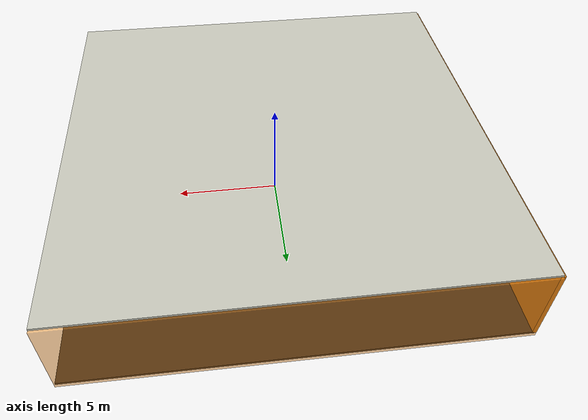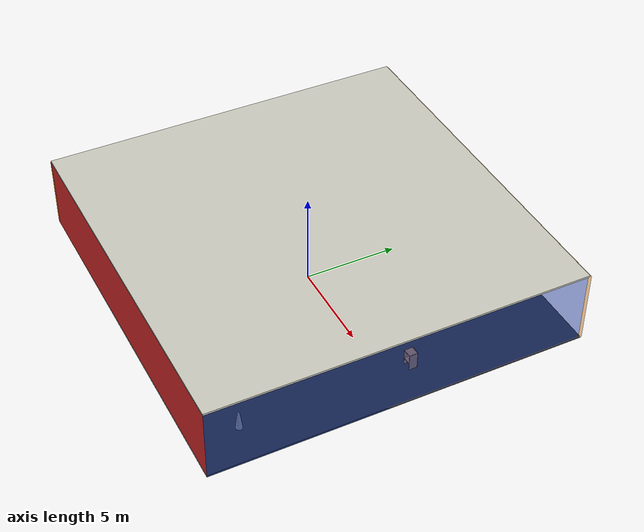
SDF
<sdf version="1.4">
 <world name="default">
  <physics type="ode">
   <max_step_size>0.001</max_step_size>
   <real_time_factor>1</real_time_factor>
   <real_time_update_rate>1000</real_time_update_rate>
   <gravity>0 0 -9.8</gravity>
  </physics>
  <scene><ambient>0.4 0.4 0.4 1</ambient><background>0.7 0.7 0.7 1</background><shadows>1</shadows></scene>
  <model name="Surrounding">
   <static>1</static>
   <link name="Ceiling">
    <collision name="Ceiling_Collision"><geometry><box><size>20 20 0.1</size></box></geometry></collision>
    <visual name="Ceiling_Visual">
     <geometry><box><size>20 20 0.1</size></box></geometry>
     <material>
      <script><uri>file://media/materials/scripts/gazebo.material</uri><name>Gazebo/PaintedWall</name></script>
     </material>
    </visual>
    <pose>0 0 4.05 0 0 0</pose>
   </link>
   <link name="Wall_South">
    <collision name="Wall_South_Collision">
     <geometry><box><size>20 0 4</size></box></geometry>
     <pose>0 0 2 0 -0 0</pose>
    </collision>
    <visual name="Wall_South_Visual">
     <pose>0 0 2 0 -0 0</pose>
     <geometry><box><size>20 0 4</size></box></geometry>
     <material>
      <script><uri>file://media/materials/scripts/gazebo.material</uri><name>Gazebo/RedBright</name></script>
     </material>
    </visual>
    <velocity_decay><linear>0</linear><angular>0</angular></velocity_decay>
    <pose>0 -10 0 0 -0 0</pose>
   </link>
   <link name="Wall_East">
    <collision name="Wall_21_Collision">
     <geometry><box><size>20 0 4</size></box></geometry>
     <pose>0 0 2 0 -0 0</pose>
    </collision>
    <visual name="Wall_21_Visual">
     <pose>0 0 2 0 -0 0</pose>
     <geometry><box><size>20 0 4</size></box></geometry>
     <material>
      <script><uri>file://media/materials/scripts/gazebo.material</uri><name>Gazebo/BlueTransparent</name></script>
     </material>
    </visual>
    <velocity_decay><linear>0</linear><angular>0</angular></velocity_decay>
    <pose>10 0 0 0 -0 1.5708</pose>
   </link>
   <link name="Wall_North">
    <collision name="Wall_22_Collision">
     <geometry><box><size>20 0.2 4</size></box></geometry>
     <pose>0 0 2 0 -0 0</pose>
    </collision>
    <visual name="Wall_22_Visual">
     <pose>0 0 2 0 -0 0</pose>
     <geometry><box><size>20 0.2 4</size></box></geometry>
     <material>
      <script>
       <uri>file://media/materials/scripts/gazebo.material</uri>
       <name>Gazebo/OrangeTransparent</name>
      </script>
     </material>
    </visual>
    <velocity_decay><linear>0</linear><angular>0</angular></velocity_decay>
    <pose>0 10 0 0 -0 0</pose>
   </link>
   <link name="Wall_West">
    <collision name="Wall_23_Collision">
     <geometry><box><size>20 0.2 4</size></box></geometry>
     <pose>0 0 2 0 -0 0</pose>
    </collision>
    <visual name="Wall_23_Visual">
     <pose>0 0 2 0 -0 0</pose>
     <geometry><box><size>20 0.2 4</size></box></geometry>
     <material>
      <script><uri>file://media/materials/scripts/gazebo.material</uri><name>Gazebo/Orange</name></script>
     </material>
    </visual>
    <velocity_decay><linear>0</linear><angular>0</angular></velocity_decay>
    <pose>-10 0 0 0 0 -1.5708</pose>
   </link>
   <link name="Ground_link">
    <collision name="collision">
     <pose>0 0 .05 0 -0 0</pose>
     <geometry><box><size>20 20 0.1</size></box></geometry>
    </collision>
    <visual name="visual">
     <pose>0 0 .05 0 -0 0</pose>
     <geometry><box><size>20 20 0.1</size></box></geometry>
     <material>
      <script><uri>file://media/materials/scripts/gazebo.material</uri><name>Gazebo/Black</name></script>
     </material>
    </visual>
   </link>
   <static>1</static>
  </model>
  <spherical_coordinates>
   <surface_model>EARTH_WGS84</surface_model>
   <latitude_deg>0</latitude_deg>
   <longitude_deg>0</longitude_deg>
   <elevation>0</elevation>
   <heading_deg>0</heading_deg>
  </spherical_coordinates>
  <light name="lightball_0" type="diffuse">
   <diffuse>0.8 0.8 0.8 1</diffuse>
   <specular>0.2 0.2 0.2 1</specular>
   <attenuation>
    <range>100</range>
    <constant>0.7</constant>
    <linear>0.01</linear>
    <quadratic>0.001</quadratic>
   </attenuation>
   <direction>-0.5 0.1 -0.9</direction>
   <pose>-3.78651869887 6.0163525122 1.65587118176 0 0 0</pose>
  </light>
  <light name="lightball_1" type="diffuse">
   <diffuse>0.8 0.8 0.8 1</diffuse>
   <specular>0.2 0.2 0.2 1</specular>
   <attenuation>
    <range>100</range>
    <constant>0.7</constant>
    <linear>0.01</linear>
    <quadratic>0.001</quadratic>
   </attenuation>
   <direction>-0.5 0.1 -0.9</direction>
   <pose>-6.3209130486 -2.95522593404 2.79808329981 0 0 0</pose>
  </light>
  <light name="lightball_2" type="diffuse">
   <diffuse>0.8 0.8 0.8 1</diffuse>
   <specular>0.2 0.2 0.2 1</specular>
   <attenuation>
    <range>100</range>
    <constant>0.7</constant>
    <linear>0.01</linear>
    <quadratic>0.001</quadratic>
   </attenuation>
   <direction>-0.5 0.1 -0.9</direction>
   <pose>0.948735051986 -4.95942779631 0.592300270457 0 0 0</pose>
  </light>
  <light name="lightball_3" type="diffuse">
   <diffuse>0.8 0.8 0.8 1</diffuse>
   <specular>0.2 0.2 0.2 1</specular>
   <attenuation>
    <range>100</range>
    <constant>0.7</constant>
    <linear>0.01</linear>
    <quadratic>0.001</quadratic>
   </attenuation>
   <direction>-0.5 0.1 -0.9</direction>
   <pose>5.64701107253 -2.18946103278 3.22900734397 0 0 0</pose>
  </light>
  <include><uri>model://cabinet</uri><pose>-4.49245931949 1.94958609955 0 0 0 1.78611432518</pose></include>
  <include>
   <uri>model://construction_cone</uri>
   <pose>8.00845719244 -7.51444517263 0 0 0 1.73056728869</pose>
  </include>
  <include><uri>model://cabinet</uri><pose>8.02363121465 1.52230767638 0 0 0 1.60750615289</pose></include>
 </world>
</sdf>

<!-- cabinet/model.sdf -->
<sdf version="1.5">
  <model name="cabinet">
    <static>true</static>
    <link name="cabinet_bottom_plate">
      <inertial>
        <pose>0 0 -1 0 0 0</pose>
        <inertia>
          <ixx>2.050000</ixx>
          <ixy>0</ixy>
          <ixz>0</ixz>
          <iyy>2.050000</iyy>
          <iyz>0</iyz>
          <izz>2.050000</izz>
        </inertia>
        <mass>25.000000</mass>
      </inertial>
      <collision name="cabinet_bottom_plate_geom">
        <pose>0 0 0.010000 0 0 0</pose>
        <geometry>
          <box>
            <size>0.450000 0.450000 0.020000</size>
          </box>
        </geometry>
      </collision>
      <visual name="cabinet_bottom_plate_geom_visual">
        <pose>0 0 0.010000 0 0 0</pose>
        <geometry>
          <box>
            <size>0.450000 0.450000 0.020000</size>
          </box>
        </geometry>
        <material>
          <script>
            <uri>model://media/materials/scripts/gazebo.material</uri>
            <name>Gazebo/Wood</name>
          </script>
        </material>
      </visual>
      <collision name="cabinet_bottom_plate_geom_cabinet_back_plate">
        <pose>0.235000 0 0.510000 0 0 0</pose>
        <geometry>
          <box>
            <size>0.020000 0.450000 1.020000</size>
          </box>
        </geometry>
      </collision>
      <visual name="cabinet_bottom_plate_geom_cabinet_back_plate_visual">
        <pose>0.235000 0 0.510000 0 0 0</pose>
        <geometry>
          <box>
            <size>0.020000 0.450000 1.020000</size>
          </box>
        </geometry>
        <material>
          <script>
            <uri>model://media/materials/scripts/gazebo.material</uri>
            <name>Gazebo/Wood</name>
          </script>
        </material>
      </visual>
      <collision name="cabinet_bottom_plate_geom_cabinet_left_plate">
        <pose>0 0.235000 0.510000 0 0 0</pose>
        <geometry>
          <box>
            <size>0.450000 0.020000 1.020000</size>
          </box>
        </geometry>
      </collision>
      <visual name="cabinet_bottom_plate_geom_cabinet_left_plate_visual">
        <pose>0 0.235000 0.510000 0 0 0</pose>
        <geometry>
          <box>
            <size>0.450000 0.020000 1.020000</size>
          </box>
        </geometry>
        <material>
          <script>
            <uri>model://media/materials/scripts/gazebo.material</uri>
            <name>Gazebo/Wood</name>
          </script>
        </material>
      </visual>
      <collision name="cabinet_bottom_plate_geom_cabinet_middle_plate">
        <pose>0 0 0.510000 0 0 0</pose>
        <geometry>
          <box>
            <size>0.450000 0.450000 0.020000</size>
          </box>
        </geometry>
      </collision>
      <visual name="cabinet_bottom_plate_geom_cabinet_middle_plate_visual">
        <pose>0 0 0.510000 0 0 0</pose>
        <geometry>
          <box>
            <size>0.450000 0.450000 0.020000</size>
          </box>
        </geometry>
        <material>
          <script>
            <uri>model://media/materials/scripts/gazebo.material</uri>
            <name>Gazebo/Wood</name>
          </script>
        </material>
      </visual>
      <collision name="cabinet_bottom_plate_geom_cabinet_right_plate">
        <pose>0 -0.235000 0.510000 0 0 0</pose>
        <geometry>
          <box>
            <size>0.450000 0.020000 1.020000</size>
          </box>
        </geometry>
      </collision>
      <visual name="cabinet_bottom_plate_geom_cabinet_right_plate_visual">
        <pose>0 -0.235000 0.510000 0 0 0</pose>
        <geometry>
          <box>
            <size>0.450000 0.020000 1.020000</size>
          </box>
        </geometry>
        <material>
          <script>
            <uri>model://media/materials/scripts/gazebo.material</uri>
            <name>Gazebo/Wood</name>
          </script>
        </material>
      </visual>
      <collision name="cabinet_bottom_plate_geom_cabinet_top_plate">
        <pose>0 0 1.010000 0 0 0</pose>
        <geometry>
          <box>
            <size>0.450000 0.450000 0.020000</size>
          </box>
        </geometry>
      </collision>
      <visual name="cabinet_bottom_plate_geom_cabinet_top_plate_visual">
        <pose>0 0 1.010000 0 0 0</pose>
        <geometry>
          <box>
            <size>0.450000 0.450000 0.020000</size>
          </box>
        </geometry>
        <material>
          <script>
            <uri>model://media/materials/scripts/gazebo.material</uri>
            <name>Gazebo/Wood</name>
          </script>
        </material>
      </visual>
    </link>
  </model>
</sdf>

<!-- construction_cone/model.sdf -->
<sdf version="1.5">
  <model name="Construction Cone">
    <link name="link">
      <collision name="collision">
        <geometry>
          <mesh>
            <scale>10 10 10</scale>
            <uri>file://isr-testbed/construction_cone/meshes/construction_cone.dae</uri>
          </mesh>
        </geometry>
      </collision>
      <visual name="visual">
        <geometry>
          <mesh>
            <scale>10 10 10</scale>
            <uri>file://isr-testbed/construction_cone/meshes/construction_cone.dae</uri>
          </mesh>
        </geometry>
      </visual>
    </link>
  </model>
</sdf>
